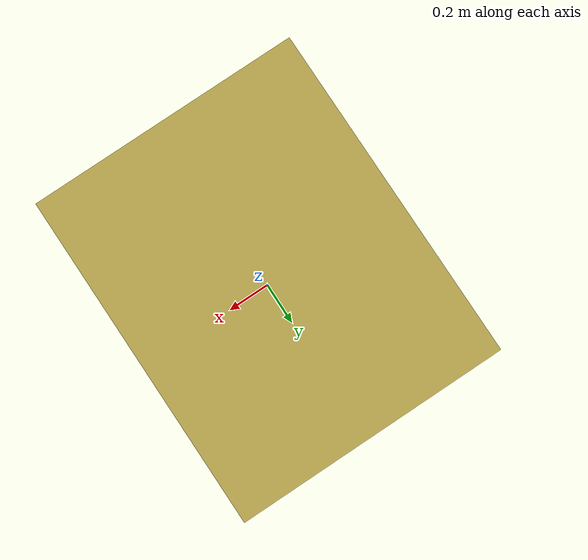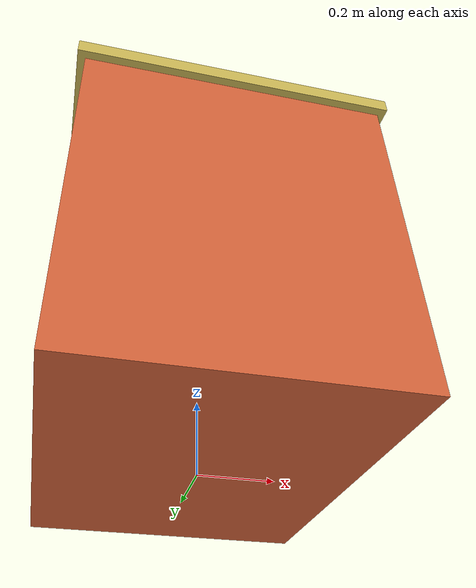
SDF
<?xml version="1.0" ?>
<sdf version="1.5">
  <model name="drawer_kitchen_1">
    <link name="link">
      <pose>0 0 0 0 0 0</pose>
      <collision name="collision">
        <geometry>
          <mesh>
            <uri>model://drawer_kitchen_1/meshes/model.dae</uri>
          </mesh>
        </geometry>
      </collision>
      <visual name="visual">
        <geometry>
          <mesh>
            <uri>model://drawer_kitchen_1/meshes/model.dae</uri>
          </mesh>
        </geometry>
      </visual>
    </link>
    <static>1</static>
  </model>
</sdf>
